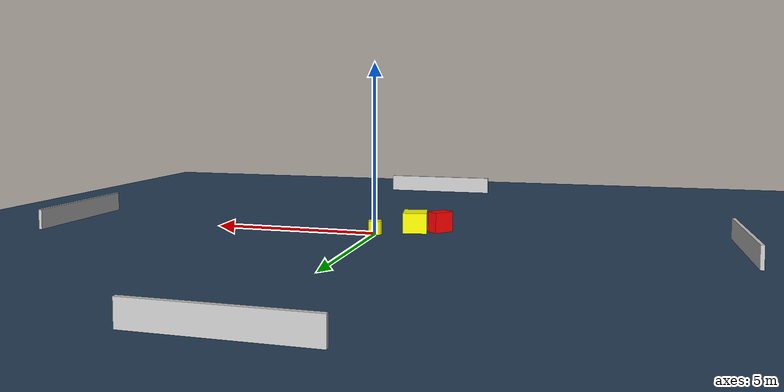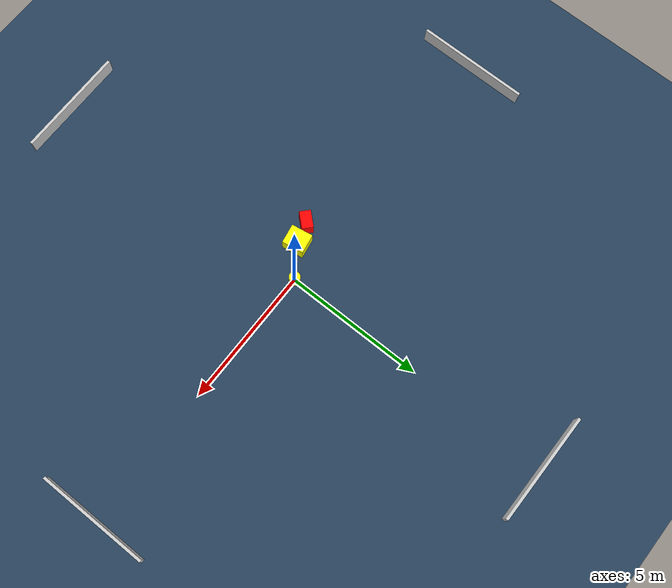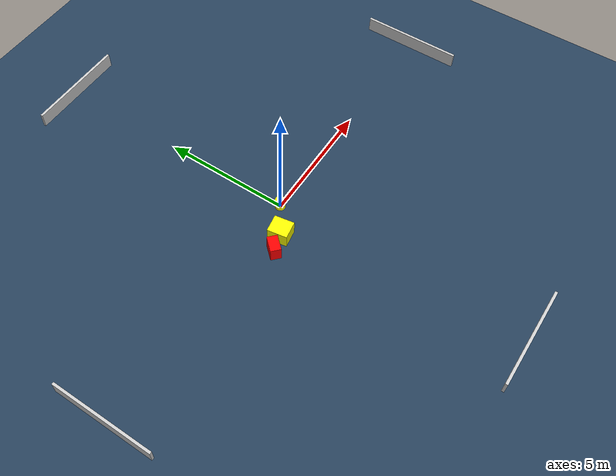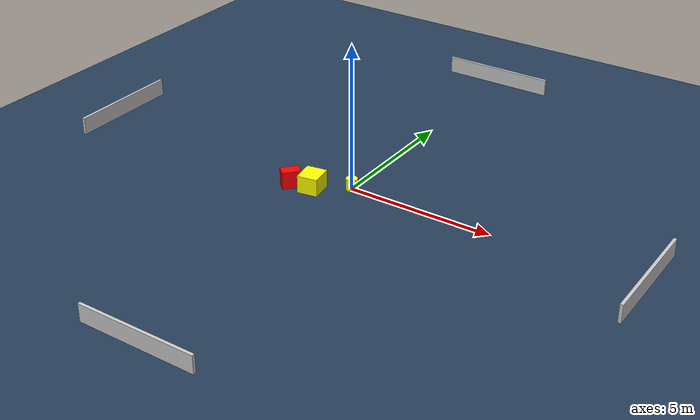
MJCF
<?xml version="1.0" ?>
<mujoco model="generated_environment">
  <option timestep="0.01" integrator="RK4" cone="elliptic"/>
  <default>
    <geom density="1"/>
  </default>
  <asset>
    <texture builtin="gradient" height="3072" name="skybox" rgb1="0.3 0.5 0.7" rgb2="0 0 0" type="skybox" width="512"/>
    <texture builtin="checker" height="300" name="groundplane" rgb1="0.2 0.3 0.4" rgb2="0.1 0.2 0.3" type="2d" width="300"/>
    <material name="groundplane" reflectance="0.2" texrepeat="5 5" texture="groundplane"/>
  </asset>
  <worldbody>
    <light dir="0 0 -1" directional="true" pos="0 0 1.5"/>
    <geom condim="3" friction="0.5 0.005 0.001" material="groundplane" name="floor" pos="0 0 0" size="0 0 0.05" type="plane"/>
    <body name="walls">
      <geom name="wall_1" condim="4" pos="-10.0 0.0 0.3" rgba="0.800000011920929 0.800000011920929 0.800000011920929 1.0" size="0.05 2.0 0.3" type="box"/>
      <geom name="wall_2" condim="4" pos="10.0 0.0 0.3" rgba="0.800000011920929 0.800000011920929 0.800000011920929 1.0" size="0.05 2.0 0.3" type="box"/>
      <geom name="wall_3" condim="4" pos="0.0 -10.0 0.3" rgba="0.800000011920929 0.800000011920929 0.800000011920929 1.0" size="2.0 0.05 0.3" type="box"/>
      <geom name="wall_4" condim="4" pos="0.0 10.0 0.3" rgba="0.800000011920929 0.800000011920929 0.800000011920929 1.0" size="2.0 0.05 0.3" type="box"/>
    </body>
    <body name="robot">
      <joint name="joint_x" type="slide" pos="0 0 0" axis="1 0 0"/>
      <joint name="joint_y" type="slide" pos="0 0 0" axis="0 1 0"/>
      <geom name="robot" type="cylinder" pos="0.0 0.0 0.2" size="0.2 0.2 0.0" mass="5.0" friction="1.0 0.005 0.0001" condim="4" rgba="1.0 1.0 0.0 1.0"/>
    </body>
    <body name="obstacle_1_movable">
      <geom name="obstacle_1_movable" condim="4" pos="-1.0481953474920318 -0.7256001108035449 0.3" euler="0 0 279.35976219169436" friction="0.0 0.005 0.001" rgba="1.0 1.0 0.0 1.0" size="0.38636721088845505 0.3475981170443869 0.3" type="box" mass="0.1"/>
      <joint type="free"/>
    </body>
    <body name="obstacle_2_static">
      <geom name="obstacle_2_static" condim="4" pos="-1.7676965747648696 -0.9182925381963852 0.3" euler="0 0 317.28940998387236" friction="0.0 0.005 0.001" rgba="1.0 0.0 0.0 1.0" size="0.20174254443802084 0.3117350748032336 0.3" type="box"/>
    </body>
  </worldbody>
  <actuator>
    <motor name="actuator_x" joint="joint_x" gear="1" ctrlrange="-1 1"/>
    <motor name="actuator_y" joint="joint_y" gear="1" ctrlrange="-1 1"/>
  </actuator>
</mujoco>
